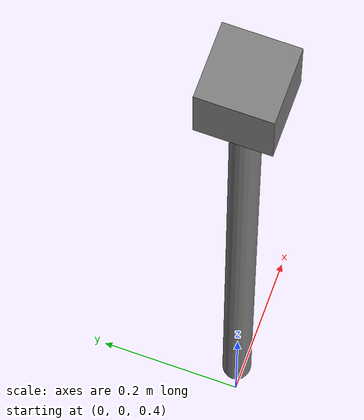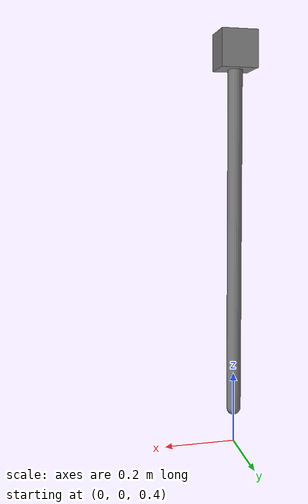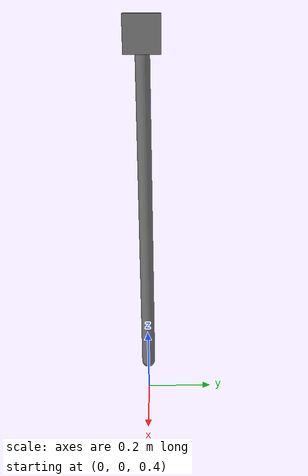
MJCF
<mujoco model="pendulum_unocnstrained">
  <!-- added manually -->
  <!-- Changed from 0.02 to 0.01 for consistency of the benchmarks -->
  <option timestep="0.01" iterations="1" ls_iterations="5">
    <flag contact="disable" eulerdamp="disable"/>
  </option>

  <worldbody>
    <body name="base" pos="0 0 1.5">
      <inertial pos="0 0 0" mass="2" diaginertia="0.00072 0.00072 0.00072"/>
      <geom name="base_visual" size="0.05 0.05 0.05" pos="0 0 0" type="box" />
      <body name="pendulum_link" pos="0 0 0">
        <inertial pos="0 0 -0.5" mass="1" diaginertia="0.087959 0.087959 0.00019896"/>
        <joint name="pendulum_joint" pos="0 0 0" axis="0 1 0" />
        <geom name="pendulum_link_visual" size="0.02 0.5" pos="0 0 -0.5" type="capsule" />
        <site name="tip" pos="0 0 -1"/>
      </body>
    </body>
  </worldbody>

  <actuator>
    <!-- Removed control limits -->
    <!-- Increased the gear ratio from 2 to 5 to get a visually reasonable trajectory-->
    <motor gear="5" name="pendulum_joint_actuator" joint="pendulum_joint"/>
  </actuator>
  <equality/>
</mujoco>
